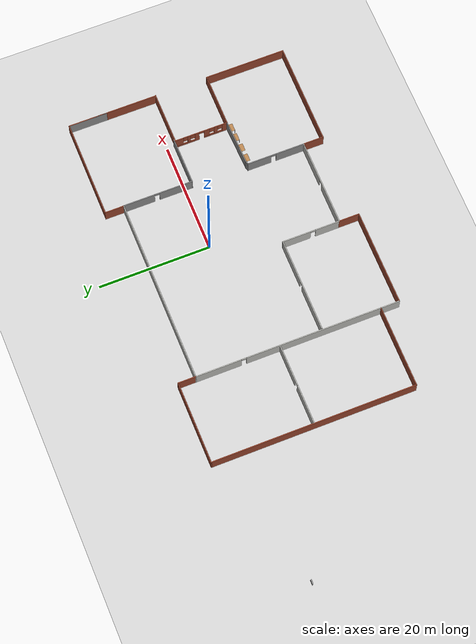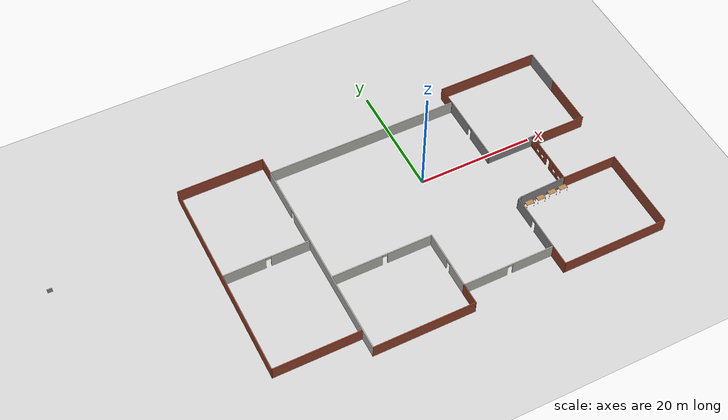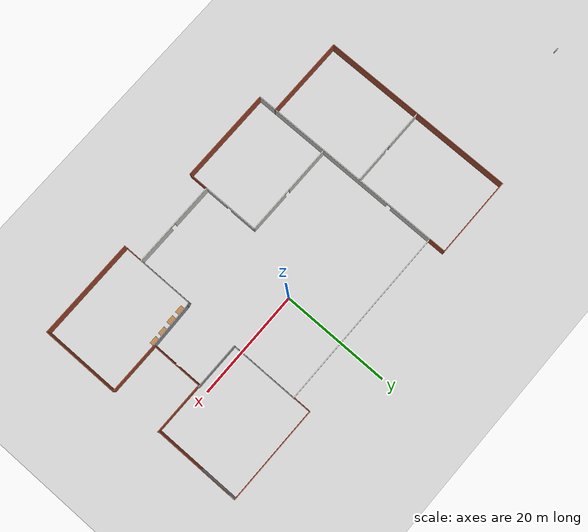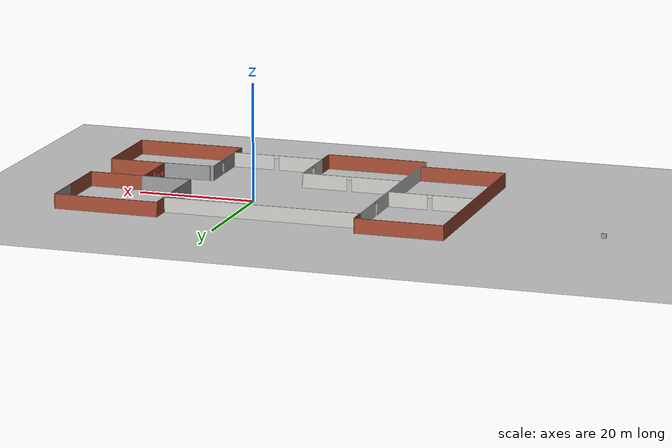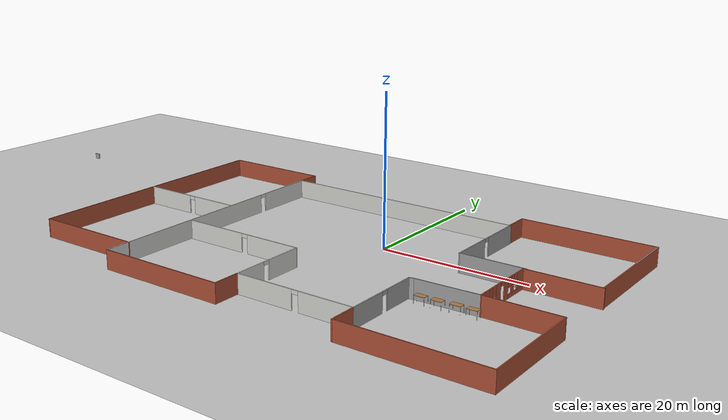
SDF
<sdf version="1.6">
 <world name="default">
  <model name="ground_plane">
   <static>1</static>
   <link name="link">
    <collision name="collision">
     <geometry><plane><normal>0 0 1</normal><size>100 100</size></plane></geometry>
     <surface><friction><ode><mu>100</mu><mu2>50</mu2></ode></friction></surface>
    </collision>
    <visual name="visual">
     <cast_shadows>0</cast_shadows>
     <geometry><plane><normal>0 0 1</normal><size>100 100</size></plane></geometry>
     <material>
      <script><uri>file://media/materials/scripts/gazebo.material</uri><name>Gazebo/Grey</name></script>
     </material>
    </visual>
   </link>
  </model>
  <model name="new_building_0">
   <pose>-3.7156 -5.49315 0 0 -0 0</pose>
   <link name="Wall_0">
    <pose>-18.35 -1.675 0 0 0 -1.5708</pose>
    <visual name="Wall_0_Visual_0">
     <pose>-14.2732 0 1.25 0 -0 0</pose>
     <geometry><box><size>8.20366 0.15 2.5</size></box></geometry>
     <material>
      <script><uri>file://media/materials/scripts/gazebo.material</uri><name>Gazebo/CeilingTiled</name></script>
      <ambient>1 1 1 1</ambient>
     </material>
    </visual>
    <collision name="Wall_0_Collision_0">
     <geometry><box><size>8.20366 0.15 2.5</size></box></geometry>
     <pose>-14.2732 0 1.25 0 -0 0</pose>
    </collision>
    <visual name="Wall_0_Visual_1">
     <pose>4.55183 0 1.25 0 -0 0</pose>
     <geometry><box><size>27.6463 0.15 2.5</size></box></geometry>
     <material>
      <script><uri>file://media/materials/scripts/gazebo.material</uri><name>Gazebo/CeilingTiled</name></script>
      <ambient>1 1 1 1</ambient>
     </material>
    </visual>
    <collision name="Wall_0_Collision_1">
     <geometry><box><size>27.6463 0.15 2.5</size></box></geometry>
     <pose>4.55183 0 1.25 0 -0 0</pose>
    </collision>
    <visual name="Wall_0_Visual_2">
     <pose>-9.72134 0 2.25 0 -0 0</pose>
     <geometry><box><size>0.9 0.15 0.5</size></box></geometry>
     <material>
      <script><uri>file://media/materials/scripts/gazebo.material</uri><name>Gazebo/CeilingTiled</name></script>
      <ambient>1 1 1 1</ambient>
     </material>
    </visual>
    <collision name="Wall_0_Collision_2">
     <geometry><box><size>0.9 0.15 0.5</size></box></geometry>
     <pose>-9.72134 0 2.25 0 -0 0</pose>
    </collision>
   </link>
   <link name="Wall_1">
    <collision name="Wall_1_Collision">
     <geometry><box><size>17.5 0.15 2.5</size></box></geometry>
     <pose>0 0 1.25 0 -0 0</pose>
    </collision>
    <visual name="Wall_1_Visual">
     <pose>0 0 1.25 0 -0 0</pose>
     <geometry><box><size>17.5 0.15 2.5</size></box></geometry>
     <material>
      <script><uri>file://media/materials/scripts/gazebo.material</uri><name>Gazebo/Bricks</name></script>
      <ambient>1 1 1 1</ambient>
     </material>
    </visual>
    <pose>-9.675 -19.975 0 0 -0 0</pose>
   </link>
   <link name="Wall_14">
    <collision name="Wall_14_Collision">
     <geometry><box><size>33.75 0.15 2.5</size></box></geometry>
     <pose>0 0 1.25 0 -0 0</pose>
    </collision>
    <visual name="Wall_14_Visual">
     <pose>0 0 1.25 0 -0 0</pose>
     <geometry><box><size>33.75 0.15 2.5</size></box></geometry>
     <material>
      <script><uri>file://media/materials/scripts/gazebo.material</uri><name>Gazebo/CeilingTiled</name></script>
      <ambient>1 1 1 1</ambient>
     </material>
    </visual>
    <pose>-1.55 16.625 0 0 -0 0</pose>
   </link>
   <link name="Wall_15">
    <collision name="Wall_15_Collision">
     <geometry><box><size>3.5 0.15 2.5</size></box></geometry>
     <pose>0 0 1.25 0 -0 0</pose>
    </collision>
    <visual name="Wall_15_Visual">
     <pose>0 0 1.25 0 -0 0</pose>
     <geometry><box><size>3.5 0.15 2.5</size></box></geometry>
     <material>
      <script><uri>file://media/materials/scripts/gazebo.material</uri><name>Gazebo/Bricks</name></script>
      <ambient>1 1 1 1</ambient>
     </material>
    </visual>
    <pose>15.25 18.3 0 0 -0 1.5708</pose>
   </link>
   <link name="Wall_16">
    <collision name="Wall_16_Collision">
     <geometry><box><size>18 0.15 2.5</size></box></geometry>
     <pose>0 0 1.25 0 -0 0</pose>
    </collision>
    <visual name="Wall_16_Visual">
     <pose>0 0 1.25 0 -0 0</pose>
     <geometry><box><size>18 0.15 2.5</size></box></geometry>
     <material>
      <script><uri>file://media/materials/scripts/gazebo.material</uri><name>Gazebo/Bricks</name></script>
      <ambient>1 1 1 1</ambient>
     </material>
    </visual>
    <pose>24.175 19.975 0 0 -0 0</pose>
   </link>
   <link name="Wall_17">
    <collision name="Wall_17_Collision">
     <geometry><box><size>7 0.15 2.5</size></box></geometry>
     <pose>0 0 1.25 0 -0 0</pose>
    </collision>
    <visual name="Wall_17_Visual">
     <pose>0 0 1.25 0 -0 0</pose>
     <geometry><box><size>7 0.15 2.5</size></box></geometry>
     <material>
      <script><uri>file://media/materials/scripts/gazebo.material</uri><name>Gazebo/Grey</name></script>
      <ambient>1 1 1 1</ambient>
     </material>
    </visual>
    <pose>33.1 16.55 0 0 0 -1.5708</pose>
   </link>
   <link name="Wall_19">
    <collision name="Wall_19_Collision">
     <geometry><box><size>16 0.15 2.5</size></box></geometry>
     <pose>0 0 1.25 0 -0 0</pose>
    </collision>
    <visual name="Wall_19_Visual">
     <pose>0 0 1.25 0 -0 0</pose>
     <geometry><box><size>16 0.15 2.5</size></box></geometry>
     <material>
      <script><uri>file://media/materials/scripts/gazebo.material</uri><name>Gazebo/Bricks</name></script>
      <ambient>1 1 1 1</ambient>
     </material>
    </visual>
    <pose>33.1 12.05 0 0 0 -1.5708</pose>
   </link>
   <link name="Wall_2">
    <collision name="Wall_2_Collision">
     <geometry><box><size>3.75 0.15 2.5</size></box></geometry>
     <pose>0 0 1.25 0 -0 0</pose>
    </collision>
    <visual name="Wall_2_Visual">
     <pose>0 0 1.25 0 -0 0</pose>
     <geometry><box><size>3.75 0.15 2.5</size></box></geometry>
     <material>
      <script><uri>file://media/materials/scripts/gazebo.material</uri><name>Gazebo/Bricks</name></script>
      <ambient>1 1 1 1</ambient>
     </material>
    </visual>
    <pose>-1 -18.175 0 0 -0 1.5708</pose>
   </link>
   <link name="Wall_23">
    <pose>-1 -11.2 0 0 -0 1.5708</pose>
    <visual name="Wall_23_Visual_0">
     <pose>-3.01613 0 1.25 0 -0 0</pose>
     <geometry><box><size>4.46774 0.15 2.5</size></box></geometry>
     <material>
      <script><uri>file://media/materials/scripts/gazebo.material</uri><name>Gazebo/CeilingTiled</name></script>
      <ambient>1 1 1 1</ambient>
     </material>
    </visual>
    <collision name="Wall_23_Collision_0">
     <geometry><box><size>4.46774 0.15 2.5</size></box></geometry>
     <pose>-3.01613 0 1.25 0 -0 0</pose>
    </collision>
    <visual name="Wall_23_Visual_1">
     <pose>2.68387 0 1.25 0 -0 0</pose>
     <geometry><box><size>5.13226 0.15 2.5</size></box></geometry>
     <material>
      <script><uri>file://media/materials/scripts/gazebo.material</uri><name>Gazebo/CeilingTiled</name></script>
      <ambient>1 1 1 1</ambient>
     </material>
    </visual>
    <collision name="Wall_23_Collision_1">
     <geometry><box><size>5.13226 0.15 2.5</size></box></geometry>
     <pose>2.68387 0 1.25 0 -0 0</pose>
    </collision>
    <visual name="Wall_23_Visual_2">
     <pose>-0.33226 0 2.25 0 -0 0</pose>
     <geometry><box><size>0.9 0.15 0.5</size></box></geometry>
     <material>
      <script><uri>file://media/materials/scripts/gazebo.material</uri><name>Gazebo/CeilingTiled</name></script>
      <ambient>1 1 1 1</ambient>
     </material>
    </visual>
    <collision name="Wall_23_Collision_2">
     <geometry><box><size>0.9 0.15 0.5</size></box></geometry>
     <pose>-0.33226 0 2.25 0 -0 0</pose>
    </collision>
   </link>
   <link name="Wall_24">
    <pose>-9.55 -6.025 0 0 -0 3.14159</pose>
    <visual name="Wall_24_Visual_0">
     <pose>-4.72507 0 1.25 0 -0 0</pose>
     <geometry><box><size>7.79986 0.15 2.5</size></box></geometry>
     <material>
      <script><uri>file://media/materials/scripts/gazebo.material</uri><name>Gazebo/CeilingTiled</name></script>
      <ambient>1 1 1 1</ambient>
     </material>
    </visual>
    <collision name="Wall_24_Collision_0">
     <geometry><box><size>7.79986 0.15 2.5</size></box></geometry>
     <pose>-4.72507 0 1.25 0 -0 0</pose>
    </collision>
    <visual name="Wall_24_Visual_1">
     <pose>4.34993 0 1.25 0 -0 0</pose>
     <geometry><box><size>8.55014 0.15 2.5</size></box></geometry>
     <material>
      <script><uri>file://media/materials/scripts/gazebo.material</uri><name>Gazebo/CeilingTiled</name></script>
      <ambient>1 1 1 1</ambient>
     </material>
    </visual>
    <collision name="Wall_24_Collision_1">
     <geometry><box><size>8.55014 0.15 2.5</size></box></geometry>
     <pose>4.34993 0 1.25 0 -0 0</pose>
    </collision>
    <visual name="Wall_24_Visual_2">
     <pose>-0.375141 0 2.25 0 -0 0</pose>
     <geometry><box><size>0.9 0.15 0.5</size></box></geometry>
     <material>
      <script><uri>file://media/materials/scripts/gazebo.material</uri><name>Gazebo/CeilingTiled</name></script>
      <ambient>1 1 1 1</ambient>
     </material>
    </visual>
    <collision name="Wall_24_Collision_2">
     <geometry><box><size>0.9 0.15 0.5</size></box></geometry>
     <pose>-0.375141 0 2.25 0 -0 0</pose>
    </collision>
   </link>
   <link name="Wall_26">
    <collision name="Wall_26_Collision">
     <geometry><box><size>3.25 0.15 2.5</size></box></geometry>
     <pose>0 0 1.25 0 -0 0</pose>
    </collision>
    <visual name="Wall_26_Visual">
     <pose>0 0 1.25 0 -0 0</pose>
     <geometry><box><size>3.25 0.15 2.5</size></box></geometry>
     <material>
      <script><uri>file://media/materials/scripts/gazebo.material</uri><name>Gazebo/Bricks</name></script>
      <ambient>1 1 1 1</ambient>
     </material>
    </visual>
    <pose>-18.35 18.175 0 0 -0 1.5708</pose>
   </link>
   <link name="Wall_27">
    <collision name="Wall_27_Collision">
     <geometry><box><size>15 0.15 2.5</size></box></geometry>
     <pose>0 0 1.25 0 -0 0</pose>
    </collision>
    <visual name="Wall_27_Visual">
     <pose>0 0 1.25 0 -0 0</pose>
     <geometry><box><size>15 0.15 2.5</size></box></geometry>
     <material>
      <script><uri>file://media/materials/scripts/gazebo.material</uri><name>Gazebo/Bricks</name></script>
      <ambient>1 1 1 1</ambient>
     </material>
    </visual>
    <pose>-25.775 19.725 0 0 -0 3.14159</pose>
   </link>
   <link name="Wall_28">
    <collision name="Wall_28_Collision">
     <geometry><box><size>36.5 0.15 2.5</size></box></geometry>
     <pose>0 0 1.25 0 -0 0</pose>
    </collision>
    <visual name="Wall_28_Visual">
     <pose>0 0 1.25 0 -0 0</pose>
     <geometry><box><size>36.5 0.15 2.5</size></box></geometry>
     <material>
      <script><uri>file://media/materials/scripts/gazebo.material</uri><name>Gazebo/Bricks</name></script>
      <ambient>1 1 1 1</ambient>
     </material>
    </visual>
    <pose>-33.2 1.55 0 0 0 -1.5708</pose>
   </link>
   <link name="Wall_29">
    <collision name="Wall_29_Collision">
     <geometry><box><size>15 0.15 2.5</size></box></geometry>
     <pose>0 0 1.25 0 -0 0</pose>
    </collision>
    <visual name="Wall_29_Visual">
     <pose>0 0 1.25 0 -0 0</pose>
     <geometry><box><size>15 0.15 2.5</size></box></geometry>
     <material>
      <script><uri>file://media/materials/scripts/gazebo.material</uri><name>Gazebo/Bricks</name></script>
      <ambient>1 1 1 1</ambient>
     </material>
    </visual>
    <pose>-25.775 -16.625 0 0 -0 0</pose>
   </link>
   <link name="Wall_3">
    <pose>6.925 -16.375 0 0 -0 0</pose>
    <visual name="Wall_3_Visual_0">
     <pose>-4.08922 0 1.25 0 -0 0</pose>
     <geometry><box><size>7.82155 0.15 2.5</size></box></geometry>
     <material>
      <script><uri>file://media/materials/scripts/gazebo.material</uri><name>Gazebo/CeilingTiled</name></script>
      <ambient>1 1 1 1</ambient>
     </material>
    </visual>
    <collision name="Wall_3_Collision_0">
     <geometry><box><size>7.82155 0.15 2.5</size></box></geometry>
     <pose>-4.08922 0 1.25 0 -0 0</pose>
    </collision>
    <visual name="Wall_3_Visual_1">
     <pose>4.36078 0 1.25 0 -0 0</pose>
     <geometry><box><size>7.27845 0.15 2.5</size></box></geometry>
     <material>
      <script><uri>file://media/materials/scripts/gazebo.material</uri><name>Gazebo/CeilingTiled</name></script>
      <ambient>1 1 1 1</ambient>
     </material>
    </visual>
    <collision name="Wall_3_Collision_1">
     <geometry><box><size>7.27845 0.15 2.5</size></box></geometry>
     <pose>4.36078 0 1.25 0 -0 0</pose>
    </collision>
    <visual name="Wall_3_Visual_2">
     <pose>0.271553 0 2.25 0 -0 0</pose>
     <geometry><box><size>0.9 0.15 0.5</size></box></geometry>
     <material>
      <script><uri>file://media/materials/scripts/gazebo.material</uri><name>Gazebo/CeilingTiled</name></script>
      <ambient>1 1 1 1</ambient>
     </material>
    </visual>
    <collision name="Wall_3_Collision_2">
     <geometry><box><size>0.9 0.15 0.5</size></box></geometry>
     <pose>0.271553 0 2.25 0 -0 0</pose>
    </collision>
   </link>
   <link name="Wall_31">
    <pose>-25.8582 1.59648 0 0 -0 0</pose>
    <visual name="Wall_31_Visual_0">
     <pose>-3.74225 0 1.25 0 -0 0</pose>
     <geometry><box><size>7.2655 0.15 2.5</size></box></geometry>
     <material>
      <script><uri>file://media/materials/scripts/gazebo.material</uri><name>Gazebo/CeilingTiled</name></script>
      <ambient>1 1 1 1</ambient>
     </material>
    </visual>
    <collision name="Wall_31_Collision_0">
     <geometry><box><size>7.2655 0.15 2.5</size></box></geometry>
     <pose>-3.74225 0 1.25 0 -0 0</pose>
    </collision>
    <visual name="Wall_31_Visual_1">
     <pose>4.08275 0 1.25 0 -0 0</pose>
     <geometry><box><size>6.5845 0.15 2.5</size></box></geometry>
     <material>
      <script><uri>file://media/materials/scripts/gazebo.material</uri><name>Gazebo/CeilingTiled</name></script>
      <ambient>1 1 1 1</ambient>
     </material>
    </visual>
    <collision name="Wall_31_Collision_1">
     <geometry><box><size>6.5845 0.15 2.5</size></box></geometry>
     <pose>4.08275 0 1.25 0 -0 0</pose>
    </collision>
    <visual name="Wall_31_Visual_2">
     <pose>0.340496 0 2.25 0 -0 0</pose>
     <geometry><box><size>0.9 0.15 0.5</size></box></geometry>
     <material>
      <script><uri>file://media/materials/scripts/gazebo.material</uri><name>Gazebo/CeilingTiled</name></script>
      <ambient>1 1 1 1</ambient>
     </material>
    </visual>
    <collision name="Wall_31_Collision_2">
     <geometry><box><size>0.9 0.15 0.5</size></box></geometry>
     <pose>0.340496 0 2.25 0 -0 0</pose>
    </collision>
   </link>
   <link name="Wall_34">
    <pose>14.85 -11.2 0 0 -0 1.5708</pose>
    <visual name="Wall_34_Visual_0">
     <pose>-2.62042 0 1.25 0 -0 0</pose>
     <geometry><box><size>5.25915 0.15 2.5</size></box></geometry>
     <material>
      <script><uri>file://media/materials/scripts/gazebo.material</uri><name>Gazebo/Grey</name></script>
      <ambient>1 1 1 1</ambient>
     </material>
    </visual>
    <collision name="Wall_34_Collision_0">
     <geometry><box><size>5.25915 0.15 2.5</size></box></geometry>
     <pose>-2.62042 0 1.25 0 -0 0</pose>
    </collision>
    <visual name="Wall_34_Visual_1">
     <pose>3.07958 0 1.25 0 -0 0</pose>
     <geometry><box><size>4.34084 0.15 2.5</size></box></geometry>
     <material>
      <script><uri>file://media/materials/scripts/gazebo.material</uri><name>Gazebo/Grey</name></script>
      <ambient>1 1 1 1</ambient>
     </material>
    </visual>
    <collision name="Wall_34_Collision_1">
     <geometry><box><size>4.34084 0.15 2.5</size></box></geometry>
     <pose>3.07958 0 1.25 0 -0 0</pose>
    </collision>
    <visual name="Wall_34_Visual_2">
     <pose>0.459155 0 2.25 0 -0 0</pose>
     <geometry><box><size>0.9 0.15 0.5</size></box></geometry>
     <material>
      <script><uri>file://media/materials/scripts/gazebo.material</uri><name>Gazebo/Grey</name></script>
      <ambient>1 1 1 1</ambient>
     </material>
    </visual>
    <collision name="Wall_34_Collision_2">
     <geometry><box><size>0.9 0.15 0.5</size></box></geometry>
     <pose>0.459155 0 2.25 0 -0 0</pose>
    </collision>
   </link>
   <link name="Wall_35">
    <collision name="Wall_35_Collision">
     <geometry><box><size>0.75 0.15 2.5</size></box></geometry>
     <pose>0 0 1.25 0 -0 0</pose>
    </collision>
    <visual name="Wall_35_Visual">
     <pose>0 0 1.25 0 -0 0</pose>
     <geometry><box><size>0.75 0.15 2.5</size></box></geometry>
     <material>
      <script><uri>file://media/materials/scripts/gazebo.material</uri><name>Gazebo/Grey</name></script>
      <ambient>1 1 1 1</ambient>
     </material>
    </visual>
    <pose>15.1398 -5.94735 0 0 -0 0.261799</pose>
   </link>
   <link name="Wall_36">
    <collision name="Wall_36_Collision">
     <geometry><box><size>8.32411 0.15 2.5</size></box></geometry>
     <pose>0 0 1.25 0 -0 0</pose>
    </collision>
    <visual name="Wall_36_Visual">
     <pose>0 0 1.25 0 -0 0</pose>
     <geometry><box><size>8.32411 0.15 2.5</size></box></geometry>
     <material>
      <script><uri>file://media/materials/scripts/gazebo.material</uri><name>Gazebo/Grey</name></script>
      <ambient>1 1 1 1</ambient>
     </material>
    </visual>
    <pose>19.5148 -5.74735 0 0 -0 0.029942</pose>
   </link>
   <link name="Wall_38">
    <collision name="Wall_38_Collision">
     <geometry><box><size>8.75 0.15 2.5</size></box></geometry>
     <pose>0 0 1.25 0 -0 0</pose>
    </collision>
    <visual name="Wall_38_Visual">
     <pose>0 0 1.25 0 -0 0</pose>
     <geometry><box><size>8.75 0.15 2.5</size></box></geometry>
     <material>
      <script><uri>file://media/materials/scripts/gazebo.material</uri><name>Gazebo/Grey</name></script>
      <ambient>1 1 1 1</ambient>
     </material>
    </visual>
    <pose>19.607 4.1097 0 0 -0 3.14159</pose>
   </link>
   <link name="Wall_39">
    <pose>15.307 10.4097 0 0 -0 1.5708</pose>
    <visual name="Wall_39_Visual_0">
     <pose>-3.34488 0 1.25 0 -0 0</pose>
     <geometry><box><size>6.06024 0.15 2.5</size></box></geometry>
     <material>
      <script><uri>file://media/materials/scripts/gazebo.material</uri><name>Gazebo/Grey</name></script>
      <ambient>1 1 1 1</ambient>
     </material>
    </visual>
    <collision name="Wall_39_Collision_0">
     <geometry><box><size>6.06024 0.15 2.5</size></box></geometry>
     <pose>-3.34488 0 1.25 0 -0 0</pose>
    </collision>
    <visual name="Wall_39_Visual_1">
     <pose>3.48012 0 1.25 0 -0 0</pose>
     <geometry><box><size>5.78976 0.15 2.5</size></box></geometry>
     <material>
      <script><uri>file://media/materials/scripts/gazebo.material</uri><name>Gazebo/Grey</name></script>
      <ambient>1 1 1 1</ambient>
     </material>
    </visual>
    <collision name="Wall_39_Collision_1">
     <geometry><box><size>5.78976 0.15 2.5</size></box></geometry>
     <pose>3.48012 0 1.25 0 -0 0</pose>
    </collision>
    <visual name="Wall_39_Visual_2">
     <pose>0.135236 0 2.25 0 -0 0</pose>
     <geometry><box><size>0.9 0.15 0.5</size></box></geometry>
     <material>
      <script><uri>file://media/materials/scripts/gazebo.material</uri><name>Gazebo/Grey</name></script>
      <ambient>1 1 1 1</ambient>
     </material>
    </visual>
    <collision name="Wall_39_Collision_2">
     <geometry><box><size>0.9 0.15 0.5</size></box></geometry>
     <pose>0.135236 0 2.25 0 -0 0</pose>
    </collision>
   </link>
   <link name="Wall_4">
    <collision name="Wall_4_Collision">
     <geometry><box><size>3.75 0.15 2.5</size></box></geometry>
     <pose>0 0 1.25 0 -0 0</pose>
    </collision>
    <visual name="Wall_4_Visual">
     <pose>0 0 1.25 0 -0 0</pose>
     <geometry><box><size>3.75 0.15 2.5</size></box></geometry>
     <material>
      <script><uri>file://media/materials/scripts/gazebo.material</uri><name>Gazebo/Bricks</name></script>
      <ambient>1 1 1 1</ambient>
     </material>
    </visual>
    <pose>14.85 -18.175 0 0 0 -1.5708</pose>
   </link>
   <link name="Wall_5">
    <collision name="Wall_5_Collision">
     <geometry><box><size>18.5 0.15 2.5</size></box></geometry>
     <pose>0 0 1.25 0 -0 0</pose>
    </collision>
    <visual name="Wall_5_Visual">
     <pose>0 0 1.25 0 -0 0</pose>
     <geometry><box><size>18.5 0.15 2.5</size></box></geometry>
     <material>
      <script><uri>file://media/materials/scripts/gazebo.material</uri><name>Gazebo/Bricks</name></script>
      <ambient>1 1 1 1</ambient>
     </material>
    </visual>
    <pose>24.025 -19.975 0 0 -0 0</pose>
   </link>
   <link name="Wall_6">
    <collision name="Wall_6_Collision">
     <geometry><box><size>14.5 0.15 2.5</size></box></geometry>
     <pose>0 0 1.25 0 -0 0</pose>
    </collision>
    <visual name="Wall_6_Visual">
     <pose>0 0 1.25 0 -0 0</pose>
     <geometry><box><size>14.5 0.15 2.5</size></box></geometry>
     <material>
      <script><uri>file://media/materials/scripts/gazebo.material</uri><name>Gazebo/Bricks</name></script>
      <ambient>1 1 1 1</ambient>
     </material>
    </visual>
    <pose>33.2 -12.8 0 0 -0 1.5708</pose>
   </link>
   <link name="Wall_7">
    <collision name="Wall_7_Collision">
     <geometry><box><size>9.75 0.15 2.5</size></box></geometry>
     <pose>0 0 1.25 0 -0 0</pose>
    </collision>
    <visual name="Wall_7_Visual">
     <pose>0 0 1.25 0 -0 0</pose>
     <geometry><box><size>9.75 0.15 2.5</size></box></geometry>
     <material>
      <script><uri>file://media/materials/scripts/gazebo.material</uri><name>Gazebo/Bricks</name></script>
      <ambient>1 1 1 1</ambient>
     </material>
    </visual>
    <pose>28.4 -5.625 0 0 -0 3.14159</pose>
   </link>
   <link name="Wall_8">
    <pose>23.6 -0.825 0 0 -0 1.5708</pose>
    <visual name="Wall_8_Visual_0">
     <pose>-4.35769 0 1.25 0 -0 0</pose>
     <geometry><box><size>1.03461 0.15 2.5</size></box></geometry>
     <material>
      <script><uri>file://media/materials/scripts/gazebo.material</uri><name>Gazebo/Bricks</name></script>
      <ambient>1 1 1 1</ambient>
     </material>
    </visual>
    <collision name="Wall_8_Collision_0">
     <geometry><box><size>1.03461 0.15 2.5</size></box></geometry>
     <pose>-4.35769 0 1.25 0 -0 0</pose>
    </collision>
    <visual name="Wall_8_Visual_1">
     <pose>0.789877 0 1.25 0 -0 0</pose>
     <geometry><box><size>0.786971 0.15 2.5</size></box></geometry>
     <material>
      <script><uri>file://media/materials/scripts/gazebo.material</uri><name>Gazebo/Bricks</name></script>
      <ambient>1 1 1 1</ambient>
     </material>
    </visual>
    <collision name="Wall_8_Collision_1">
     <geometry><box><size>0.786971 0.15 2.5</size></box></geometry>
     <pose>0.789877 0 1.25 0 -0 0</pose>
    </collision>
    <visual name="Wall_8_Visual_2">
     <pose>-2.172 0 0.25 0 -0 0</pose>
     <geometry><box><size>3.33678 0.15 0.5</size></box></geometry>
     <material>
      <script><uri>file://media/materials/scripts/gazebo.material</uri><name>Gazebo/Bricks</name></script>
      <ambient>1 1 1 1</ambient>
     </material>
    </visual>
    <collision name="Wall_8_Collision_2">
     <geometry><box><size>3.33678 0.15 0.5</size></box></geometry>
     <pose>-2.172 0 0.25 0 -0 0</pose>
    </collision>
    <visual name="Wall_8_Visual_3">
     <pose>3.02918 0 0.25 0 -0 0</pose>
     <geometry><box><size>3.69164 0.15 0.5</size></box></geometry>
     <material>
      <script><uri>file://media/materials/scripts/gazebo.material</uri><name>Gazebo/Bricks</name></script>
      <ambient>1 1 1 1</ambient>
     </material>
    </visual>
    <collision name="Wall_8_Collision_3">
     <geometry><box><size>3.69164 0.15 0.5</size></box></geometry>
     <pose>3.02918 0 0.25 0 -0 0</pose>
    </collision>
    <visual name="Wall_8_Visual_4">
     <pose>-2.69744 0 1.5 0 -0 0</pose>
     <geometry><box><size>0.685898 0.15 2</size></box></geometry>
     <material>
      <script><uri>file://media/materials/scripts/gazebo.material</uri><name>Gazebo/Bricks</name></script>
      <ambient>1 1 1 1</ambient>
     </material>
    </visual>
    <collision name="Wall_8_Collision_4">
     <geometry><box><size>0.685898 0.15 2</size></box></geometry>
     <pose>-2.69744 0 1.5 0 -0 0</pose>
    </collision>
    <visual name="Wall_8_Visual_5">
     <pose>-1.02905 0 1.5 0 -0 0</pose>
     <geometry><box><size>1.05088 0.15 2</size></box></geometry>
     <material>
      <script><uri>file://media/materials/scripts/gazebo.material</uri><name>Gazebo/Bricks</name></script>
      <ambient>1 1 1 1</ambient>
     </material>
    </visual>
    <collision name="Wall_8_Collision_5">
     <geometry><box><size>1.05088 0.15 2</size></box></geometry>
     <pose>-1.02905 0 1.5 0 -0 0</pose>
    </collision>
    <visual name="Wall_8_Visual_6">
     <pose>-1.02905 0 1.5 0 -0 0</pose>
     <geometry><box><size>1.05088 0.15 2</size></box></geometry>
     <material>
      <script><uri>file://media/materials/scripts/gazebo.material</uri><name>Gazebo/Bricks</name></script>
      <ambient>1 1 1 1</ambient>
     </material>
    </visual>
    <collision name="Wall_8_Collision_6">
     <geometry><box><size>1.05088 0.15 2</size></box></geometry>
     <pose>-1.02905 0 1.5 0 -0 0</pose>
    </collision>
    <visual name="Wall_8_Visual_7">
     <pose>2.25555 0 1.5 0 -0 0</pose>
     <geometry><box><size>0.544384 0.15 2</size></box></geometry>
     <material>
      <script><uri>file://media/materials/scripts/gazebo.material</uri><name>Gazebo/Bricks</name></script>
      <ambient>1 1 1 1</ambient>
     </material>
    </visual>
    <collision name="Wall_8_Collision_7">
     <geometry><box><size>0.544384 0.15 2</size></box></geometry>
     <pose>2.25555 0 1.5 0 -0 0</pose>
    </collision>
    <visual name="Wall_8_Visual_8">
     <pose>4.10137 0 1.5 0 -0 0</pose>
     <geometry><box><size>1.54725 0.15 2</size></box></geometry>
     <material>
      <script><uri>file://media/materials/scripts/gazebo.material</uri><name>Gazebo/Bricks</name></script>
      <ambient>1 1 1 1</ambient>
     </material>
    </visual>
    <collision name="Wall_8_Collision_8">
     <geometry><box><size>1.54725 0.15 2</size></box></geometry>
     <pose>4.10137 0 1.5 0 -0 0</pose>
    </collision>
    <visual name="Wall_8_Visual_9">
     <pose>-3.44039 0 1.9 0 -0 0</pose>
     <geometry><box><size>0.8 0.15 1.2</size></box></geometry>
     <material>
      <script><uri>file://media/materials/scripts/gazebo.material</uri><name>Gazebo/Bricks</name></script>
      <ambient>1 1 1 1</ambient>
     </material>
    </visual>
    <collision name="Wall_8_Collision_9">
     <geometry><box><size>0.8 0.15 1.2</size></box></geometry>
     <pose>-3.44039 0 1.9 0 -0 0</pose>
    </collision>
    <visual name="Wall_8_Visual_10">
     <pose>1.58336 0 1.9 0 -0 0</pose>
     <geometry><box><size>0.8 0.15 1.2</size></box></geometry>
     <material>
      <script><uri>file://media/materials/scripts/gazebo.material</uri><name>Gazebo/Bricks</name></script>
      <ambient>1 1 1 1</ambient>
     </material>
    </visual>
    <collision name="Wall_8_Collision_10">
     <geometry><box><size>0.8 0.15 1.2</size></box></geometry>
     <pose>1.58336 0 1.9 0 -0 0</pose>
    </collision>
    <visual name="Wall_8_Visual_11">
     <pose>-1.95449 0 1.9 0 -0 0</pose>
     <geometry><box><size>0.8 0.15 1.2</size></box></geometry>
     <material>
      <script><uri>file://media/materials/scripts/gazebo.material</uri><name>Gazebo/Bricks</name></script>
      <ambient>1 1 1 1</ambient>
     </material>
    </visual>
    <collision name="Wall_8_Collision_11">
     <geometry><box><size>0.8 0.15 1.2</size></box></geometry>
     <pose>-1.95449 0 1.9 0 -0 0</pose>
    </collision>
    <visual name="Wall_8_Visual_12">
     <pose>2.92775 0 1.9 0 -0 0</pose>
     <geometry><box><size>0.8 0.15 1.2</size></box></geometry>
     <material>
      <script><uri>file://media/materials/scripts/gazebo.material</uri><name>Gazebo/Bricks</name></script>
      <ambient>1 1 1 1</ambient>
     </material>
    </visual>
    <collision name="Wall_8_Collision_12">
     <geometry><box><size>0.8 0.15 1.2</size></box></geometry>
     <pose>2.92775 0 1.9 0 -0 0</pose>
    </collision>
    <visual name="Wall_8_Visual_13">
     <pose>-0.053609 0 2.25 0 -0 0</pose>
     <geometry><box><size>0.9 0.15 0.5</size></box></geometry>
     <material>
      <script><uri>file://media/materials/scripts/gazebo.material</uri><name>Gazebo/Bricks</name></script>
      <ambient>1 1 1 1</ambient>
     </material>
    </visual>
    <collision name="Wall_8_Collision_13">
     <geometry><box><size>0.9 0.15 0.5</size></box></geometry>
     <pose>-0.053609 0 2.25 0 -0 0</pose>
    </collision>
    <visual name="Wall_8_Visual_14">
     <pose>-0.053609 0 2.25 0 -0 0</pose>
     <geometry><box><size>0.9 0.15 0.5</size></box></geometry>
     <material>
      <script><uri>file://media/materials/scripts/gazebo.material</uri><name>Gazebo/Bricks</name></script>
      <ambient>1 1 1 1</ambient>
     </material>
    </visual>
    <collision name="Wall_8_Collision_14">
     <geometry><box><size>0.9 0.15 0.5</size></box></geometry>
     <pose>-0.053609 0 2.25 0 -0 0</pose>
    </collision>
   </link>
   <link name="Wall_9">
    <collision name="Wall_9_Collision">
     <geometry><box><size>9.75 0.15 2.5</size></box></geometry>
     <pose>0 0 1.25 0 -0 0</pose>
    </collision>
    <visual name="Wall_9_Visual">
     <pose>0 0 1.25 0 -0 0</pose>
     <geometry><box><size>9.75 0.15 2.5</size></box></geometry>
     <material>
      <script><uri>file://media/materials/scripts/gazebo.material</uri><name>Gazebo/Bricks</name></script>
      <ambient>1 1 1 1</ambient>
     </material>
    </visual>
    <pose>28.4 3.975 0 0 -0 0</pose>
   </link>
   <link name="Window_4">
    <collision name="Window_4_Collision">
     <geometry><box><size>0.8 0.17 0.8</size></box></geometry>
     <pose>0 0 0.4 0 -0 0</pose>
    </collision>
    <visual name="Window_4_Visual">
     <pose>0 0 0.4 0 -0 0</pose>
     <geometry><box><size>0.8 0.17 0.8</size></box></geometry>
     <material>
      <script><uri>file://media/materials/scripts/gazebo.material</uri><name>Gazebo/Grey</name></script>
     </material>
    </visual>
    <pose>-57.4661 12.0612 0.5 0 -0 0</pose>
   </link>
   <static>1</static>
  </model>
  <model name="table">
   <static>0</static>
   <link name="link">
    <collision name="surface">
     <pose>0 0 1 0 -0 0</pose>
     <geometry><box><size>1.5 0.8 0.03</size></box></geometry>
     <surface><friction><ode><mu>0.6</mu><mu2>0.6</mu2></ode></friction></surface>
    </collision>
    <visual name="visual1">
     <pose>0 0 1 0 -0 0</pose>
     <geometry><box><size>1.4 0.8 0.04</size></box></geometry>
     <material>
      <script><uri>file://media/materials/scripts/gazebo.material</uri><name>Gazebo/Wood</name></script>
     </material>
    </visual>
    <collision name="front_left_leg">
     <pose>0.68 0.38 0.5 0 -0 0</pose>
     <geometry><cylinder><radius>0.02</radius><length>1</length></cylinder></geometry>
    </collision>
    <visual name="front_left_leg">
     <pose>0.68 0.38 0.5 0 -0 0</pose>
     <geometry><cylinder><radius>0.02</radius><length>1</length></cylinder></geometry>
     <material>
      <script><uri>file://media/materials/scripts/gazebo.material</uri><name>Gazebo/Grey</name></script>
     </material>
    </visual>
    <collision name="front_right_leg">
     <pose>0.68 -0.38 0.5 0 -0 0</pose>
     <geometry><cylinder><radius>0.02</radius><length>1</length></cylinder></geometry>
    </collision>
    <visual name="front_right_leg">
     <pose>0.68 -0.38 0.5 0 -0 0</pose>
     <geometry><cylinder><radius>0.02</radius><length>1</length></cylinder></geometry>
     <material>
      <script><uri>file://media/materials/scripts/gazebo.material</uri><name>Gazebo/Grey</name></script>
     </material>
    </visual>
    <collision name="back_right_leg">
     <pose>-0.68 -0.38 0.5 0 -0 0</pose>
     <geometry><cylinder><radius>0.02</radius><length>1</length></cylinder></geometry>
    </collision>
    <visual name="back_right_leg">
     <pose>-0.68 -0.38 0.5 0 -0 0</pose>
     <geometry><cylinder><radius>0.02</radius><length>1</length></cylinder></geometry>
     <material>
      <script><uri>file://media/materials/scripts/gazebo.material</uri><name>Gazebo/Grey</name></script>
     </material>
    </visual>
    <collision name="back_left_leg">
     <pose>-0.68 0.38 0.5 0 -0 0</pose>
     <geometry><cylinder><radius>0.02</radius><length>1</length></cylinder></geometry>
    </collision>
    <visual name="back_left_leg">
     <pose>-0.68 0.38 0.5 0 -0 0</pose>
     <geometry><cylinder><radius>0.02</radius><length>1</length></cylinder></geometry>
     <material>
      <script><uri>file://media/materials/scripts/gazebo.material</uri><name>Gazebo/Grey</name></script>
     </material>
    </visual>
    <inertial>
     <inertia><ixx>1</ixx><ixy>0</ixy><ixz>0</ixz><iyy>1</iyy><iyz>0</iyz><izz>1</izz></inertia>
     <mass>1</mass>
    </inertial>
   </link>
   <pose>13.0209 -12.0062 -2e-06 0 -0 0</pose>
  </model>
  <model name="table_clone">
   <static>0</static>
   <link name="link">
    <collision name="surface">
     <pose>0 0 1 0 -0 0</pose>
     <geometry><box><size>1.5 0.8 0.03</size></box></geometry>
     <surface><friction><ode><mu>0.6</mu><mu2>0.6</mu2></ode></friction></surface>
    </collision>
    <visual name="visual1">
     <pose>0 0 1 0 -0 0</pose>
     <geometry><box><size>1.4 0.8 0.04</size></box></geometry>
     <material>
      <script><uri>file://media/materials/scripts/gazebo.material</uri><name>Gazebo/Wood</name></script>
     </material>
    </visual>
    <collision name="front_left_leg">
     <pose>0.68 0.38 0.5 0 -0 0</pose>
     <geometry><cylinder><radius>0.02</radius><length>1</length></cylinder></geometry>
    </collision>
    <visual name="front_left_leg">
     <pose>0.68 0.38 0.5 0 -0 0</pose>
     <geometry><cylinder><radius>0.02</radius><length>1</length></cylinder></geometry>
     <material>
      <script><uri>file://media/materials/scripts/gazebo.material</uri><name>Gazebo/Grey</name></script>
     </material>
    </visual>
    <collision name="front_right_leg">
     <pose>0.68 -0.38 0.5 0 -0 0</pose>
     <geometry><cylinder><radius>0.02</radius><length>1</length></cylinder></geometry>
    </collision>
    <visual name="front_right_leg">
     <pose>0.68 -0.38 0.5 0 -0 0</pose>
     <geometry><cylinder><radius>0.02</radius><length>1</length></cylinder></geometry>
     <material>
      <script><uri>file://media/materials/scripts/gazebo.material</uri><name>Gazebo/Grey</name></script>
     </material>
    </visual>
    <collision name="back_right_leg">
     <pose>-0.68 -0.38 0.5 0 -0 0</pose>
     <geometry><cylinder><radius>0.02</radius><length>1</length></cylinder></geometry>
    </collision>
    <visual name="back_right_leg">
     <pose>-0.68 -0.38 0.5 0 -0 0</pose>
     <geometry><cylinder><radius>0.02</radius><length>1</length></cylinder></geometry>
     <material>
      <script><uri>file://media/materials/scripts/gazebo.material</uri><name>Gazebo/Grey</name></script>
     </material>
    </visual>
    <collision name="back_left_leg">
     <pose>-0.68 0.38 0.5 0 -0 0</pose>
     <geometry><cylinder><radius>0.02</radius><length>1</length></cylinder></geometry>
    </collision>
    <visual name="back_left_leg">
     <pose>-0.68 0.38 0.5 0 -0 0</pose>
     <geometry><cylinder><radius>0.02</radius><length>1</length></cylinder></geometry>
     <material>
      <script><uri>file://media/materials/scripts/gazebo.material</uri><name>Gazebo/Grey</name></script>
     </material>
    </visual>
    <inertial>
     <inertia><ixx>1</ixx><ixy>0</ixy><ixz>0</ixz><iyy>1</iyy><iyz>0</iyz><izz>1</izz></inertia>
     <mass>1</mass>
    </inertial>
   </link>
   <pose>15.1377 -11.9619 -2e-06 0 -0 0</pose>
  </model>
  <model name="table_clone_0">
   <static>0</static>
   <link name="link">
    <collision name="surface">
     <pose>0 0 1 0 -0 0</pose>
     <geometry><box><size>1.5 0.8 0.03</size></box></geometry>
     <surface><friction><ode><mu>0.6</mu><mu2>0.6</mu2></ode></friction></surface>
    </collision>
    <visual name="visual1">
     <pose>0 0 1 0 -0 0</pose>
     <geometry><box><size>1.4 0.8 0.04</size></box></geometry>
     <material>
      <script><uri>file://media/materials/scripts/gazebo.material</uri><name>Gazebo/Wood</name></script>
     </material>
    </visual>
    <collision name="front_left_leg">
     <pose>0.68 0.38 0.5 0 -0 0</pose>
     <geometry><cylinder><radius>0.02</radius><length>1</length></cylinder></geometry>
    </collision>
    <visual name="front_left_leg">
     <pose>0.68 0.38 0.5 0 -0 0</pose>
     <geometry><cylinder><radius>0.02</radius><length>1</length></cylinder></geometry>
     <material>
      <script><uri>file://media/materials/scripts/gazebo.material</uri><name>Gazebo/Grey</name></script>
     </material>
    </visual>
    <collision name="front_right_leg">
     <pose>0.68 -0.38 0.5 0 -0 0</pose>
     <geometry><cylinder><radius>0.02</radius><length>1</length></cylinder></geometry>
    </collision>
    <visual name="front_right_leg">
     <pose>0.68 -0.38 0.5 0 -0 0</pose>
     <geometry><cylinder><radius>0.02</radius><length>1</length></cylinder></geometry>
     <material>
      <script><uri>file://media/materials/scripts/gazebo.material</uri><name>Gazebo/Grey</name></script>
     </material>
    </visual>
    <collision name="back_right_leg">
     <pose>-0.68 -0.38 0.5 0 -0 0</pose>
     <geometry><cylinder><radius>0.02</radius><length>1</length></cylinder></geometry>
    </collision>
    <visual name="back_right_leg">
     <pose>-0.68 -0.38 0.5 0 -0 0</pose>
     <geometry><cylinder><radius>0.02</radius><length>1</length></cylinder></geometry>
     <material>
      <script><uri>file://media/materials/scripts/gazebo.material</uri><name>Gazebo/Grey</name></script>
     </material>
    </visual>
    <collision name="back_left_leg">
     <pose>-0.68 0.38 0.5 0 -0 0</pose>
     <geometry><cylinder><radius>0.02</radius><length>1</length></cylinder></geometry>
    </collision>
    <visual name="back_left_leg">
     <pose>-0.68 0.38 0.5 0 -0 0</pose>
     <geometry><cylinder><radius>0.02</radius><length>1</length></cylinder></geometry>
     <material>
      <script><uri>file://media/materials/scripts/gazebo.material</uri><name>Gazebo/Grey</name></script>
     </material>
    </visual>
    <inertial>
     <inertia><ixx>1</ixx><ixy>0</ixy><ixz>0</ixz><iyy>1</iyy><iyz>0</iyz><izz>1</izz></inertia>
     <mass>1</mass>
    </inertial>
   </link>
   <pose>17.3833 -11.7668 -2e-06 0 -0 0</pose>
  </model>
  <model name="table_clone_1">
   <static>0</static>
   <link name="link">
    <collision name="surface">
     <pose>0 0 1 0 -0 0</pose>
     <geometry><box><size>1.5 0.8 0.03</size></box></geometry>
     <surface><friction><ode><mu>0.6</mu><mu2>0.6</mu2></ode></friction></surface>
    </collision>
    <visual name="visual1">
     <pose>0 0 1 0 -0 0</pose>
     <geometry><box><size>1.4 0.8 0.04</size></box></geometry>
     <material>
      <script><uri>file://media/materials/scripts/gazebo.material</uri><name>Gazebo/Wood</name></script>
     </material>
    </visual>
    <collision name="front_left_leg">
     <pose>0.68 0.38 0.5 0 -0 0</pose>
     <geometry><cylinder><radius>0.02</radius><length>1</length></cylinder></geometry>
    </collision>
    <visual name="front_left_leg">
     <pose>0.68 0.38 0.5 0 -0 0</pose>
     <geometry><cylinder><radius>0.02</radius><length>1</length></cylinder></geometry>
     <material>
      <script><uri>file://media/materials/scripts/gazebo.material</uri><name>Gazebo/Grey</name></script>
     </material>
    </visual>
    <collision name="front_right_leg">
     <pose>0.68 -0.38 0.5 0 -0 0</pose>
     <geometry><cylinder><radius>0.02</radius><length>1</length></cylinder></geometry>
    </collision>
    <visual name="front_right_leg">
     <pose>0.68 -0.38 0.5 0 -0 0</pose>
     <geometry><cylinder><radius>0.02</radius><length>1</length></cylinder></geometry>
     <material>
      <script><uri>file://media/materials/scripts/gazebo.material</uri><name>Gazebo/Grey</name></script>
     </material>
    </visual>
    <collision name="back_right_leg">
     <pose>-0.68 -0.38 0.5 0 -0 0</pose>
     <geometry><cylinder><radius>0.02</radius><length>1</length></cylinder></geometry>
    </collision>
    <visual name="back_right_leg">
     <pose>-0.68 -0.38 0.5 0 -0 0</pose>
     <geometry><cylinder><radius>0.02</radius><length>1</length></cylinder></geometry>
     <material>
      <script><uri>file://media/materials/scripts/gazebo.material</uri><name>Gazebo/Grey</name></script>
     </material>
    </visual>
    <collision name="back_left_leg">
     <pose>-0.68 0.38 0.5 0 -0 0</pose>
     <geometry><cylinder><radius>0.02</radius><length>1</length></cylinder></geometry>
    </collision>
    <visual name="back_left_leg">
     <pose>-0.68 0.38 0.5 0 -0 0</pose>
     <geometry><cylinder><radius>0.02</radius><length>1</length></cylinder></geometry>
     <material>
      <script><uri>file://media/materials/scripts/gazebo.material</uri><name>Gazebo/Grey</name></script>
     </material>
    </visual>
    <inertial>
     <inertia><ixx>1</ixx><ixy>0</ixy><ixz>0</ixz><iyy>1</iyy><iyz>0</iyz><izz>1</izz></inertia>
     <mass>1</mass>
    </inertial>
   </link>
   <pose>19.4068 -11.7482 -2e-06 0 -0 0</pose>
  </model>
 </world>
</sdf>
